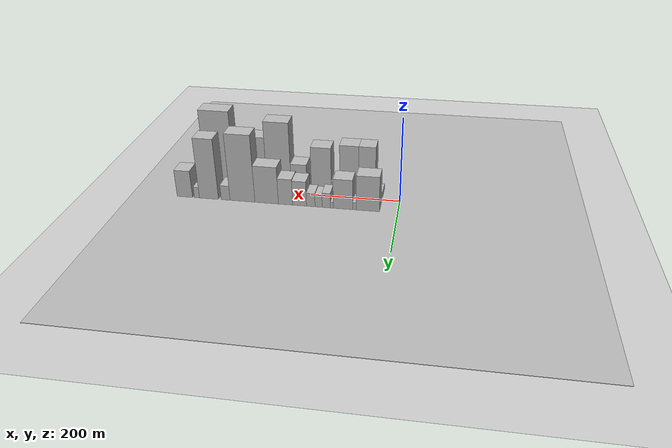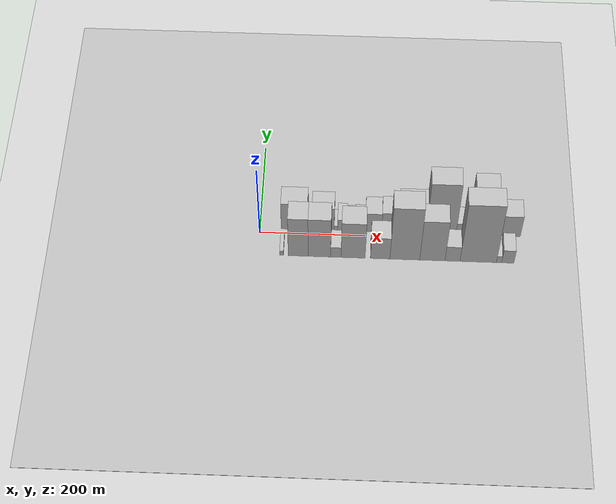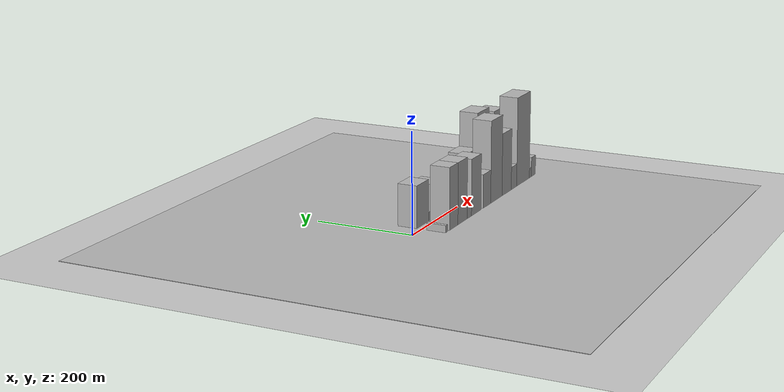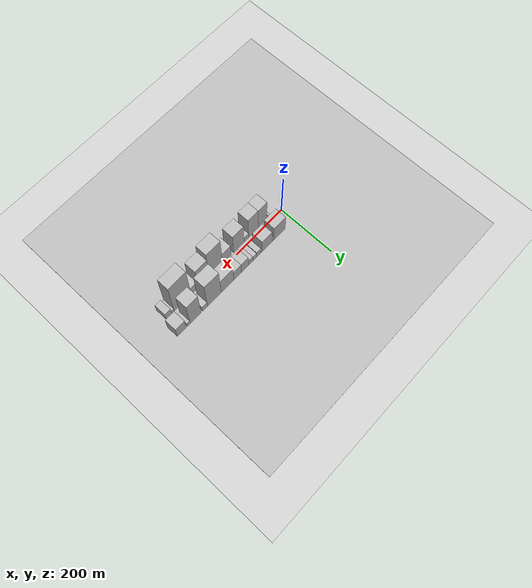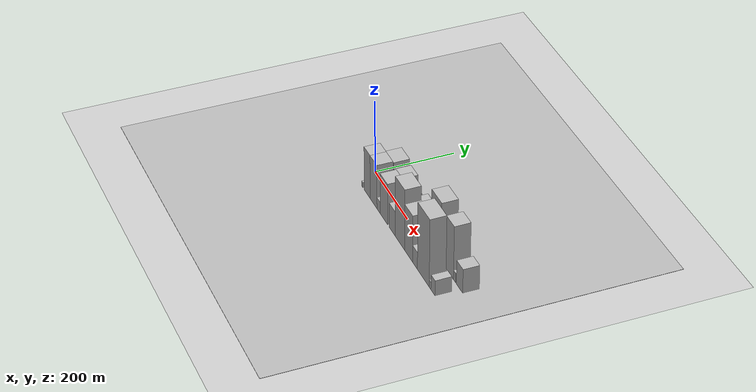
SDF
<?xml version="1.0" encoding="utf-8"?>

<sdf version="1.6">

   <world name="default">

      <gui fullscreen="0">

         <camera name="user_camera">

            <pose>-15 0 4.57585 0 0 0</pose>

            <view_controller>orbit</view_controller>

         </camera>

      </gui>

      <scene>

         <sky>

           <clouds>

             <speed>12</speed>

           </clouds>

         </sky>

         <ambient>0.4 0.4 0.4 1</ambient>

         <background>0.7 0.7 0.7 1</background>

         <shadows>1</shadows>

      </scene>

      <gravity>0 0 -9.8066</gravity>

      <magnetic_field>6e-06 2.3e-05 -4.2e-05</magnetic_field>

      <physics default="0" name="default_physics" type="ode">

         <ode>

            <solver>

               <type>quick</type>

               <iters>10</iters>

               <sor>1.0</sor>

               <use_dynamic_moi_rescaling>0</use_dynamic_moi_rescaling>

            </solver>

            <constraints>

               <cfm>0</cfm>

               <erp>0.2</erp>

               <contact_max_correcting_vel>100</contact_max_correcting_vel>

               <contact_surface_layer>0.001</contact_surface_layer>

            </constraints>

         </ode>

         <max_step_size>0.004</max_step_size>

         <real_time_factor>1</real_time_factor>

         <real_time_update_rate>250</real_time_update_rate>

      </physics>

      <light name="sun" type="directional">

         <cast_shadows>1</cast_shadows>

         <pose>0 0 10 0 0 0</pose>

         <diffuse>0.8 0.8 0.8 1</diffuse>

         <specular>0.2 0.2 0.2 1</specular>

         <attenuation>

            <range>1000</range>

            <constant>0.9</constant>

            <linear>0.01</linear>

            <quadratic>0.001</quadratic>

         </attenuation>

         <direction>-0.5 0.1 -0.9</direction>

      </light>

      <include>

         <name>ground_plane_1</name>

         <uri>model://HANNAS_ground_plane</uri>

         <pose>0 0 0  0 0 0</pose>

      </include>

      <include>

         <name>ground_plane_2</name>

         <uri>model://HANNAS_ground_plane</uri>

         <pose>100 0 0  0 0 0</pose>

      </include>

      <model name="building_1">

         <static>1</static>

         <pose frame="">65.1874 30.0000 0 0.000000 0.000000 1.570796</pose>

         <link name="link">

            <pose frame="">0 0 42.00 0 0 0</pose>

            <collision name="collision">

               <geometry>

                  <box>

                     <size>40.0000 50.3748 84.0000</size>

                  </box>

               </geometry>

               <max_contacts>10</max_contacts>

               <surface>

                  <contact>

                     <ode/>

                  </contact>

                  <bounce/>

                  <friction>

                     <torsional>

                        <ode/>

                     </torsional>

                     <ode/>

                  </friction>

               </surface>

            </collision>

            <visual name="visual">

               <cast_shadows>0</cast_shadows>

               <geometry>

                  <box>

                     <size>40.0000 50.3748 84.0000</size>

                  </box>

               </geometry>

               <material>

                  <script>

                     <uri>model://HANNAS_wall/materials/scripts</uri>

                     <uri>model://HANNAS_wall/materials/textures</uri>

                     <name>vrc/HANNAS_wall</name>

                  </script>

               </material>

            </visual>

            <self_collide>0</self_collide>

            <enable_wind>0</enable_wind>

            <kinematic>0</kinematic>

         </link>

      </model>

      <model name="building_2">

         <static>1</static>

         <pose frame="">94.4292 30.0000 0 0.000000 0.000000 1.570796</pose>

         <link name="link">

            <pose frame="">0 0 9.00 0 0 0</pose>

            <collision name="collision">

               <geometry>

                  <box>

                     <size>40.0000 8.1088 18.0000</size>

                  </box>

               </geometry>

               <max_contacts>10</max_contacts>

               <surface>

                  <contact>

                     <ode/>

                  </contact>

                  <bounce/>

                  <friction>

                     <torsional>

                        <ode/>

                     </torsional>

                     <ode/>

                  </friction>

               </surface>

            </collision>

            <visual name="visual">

               <cast_shadows>0</cast_shadows>

               <geometry>

                  <box>

                     <size>40.0000 8.1088 18.0000</size>

                  </box>

               </geometry>

               <material>

                  <script>

                     <uri>model://HANNAS_wall/materials/scripts</uri>

                     <uri>model://HANNAS_wall/materials/textures</uri>

                     <name>vrc/HANNAS_wall</name>

                  </script>

               </material>

            </visual>

            <self_collide>0</self_collide>

            <enable_wind>0</enable_wind>

            <kinematic>0</kinematic>

         </link>

      </model>

      <model name="building_3">

         <static>1</static>

         <pose frame="">119.7046 30.0000 0 0.000000 0.000000 1.570796</pose>

         <link name="link">

            <pose frame="">0 0 36.00 0 0 0</pose>

            <collision name="collision">

               <geometry>

                  <box>

                     <size>40.0000 42.4419 72.0000</size>

                  </box>

               </geometry>

               <max_contacts>10</max_contacts>

               <surface>

                  <contact>

                     <ode/>

                  </contact>

                  <bounce/>

                  <friction>

                     <torsional>

                        <ode/>

                     </torsional>

                     <ode/>

                  </friction>

               </surface>

            </collision>

            <visual name="visual">

               <cast_shadows>0</cast_shadows>

               <geometry>

                  <box>

                     <size>40.0000 42.4419 72.0000</size>

                  </box>

               </geometry>

               <material>

                  <script>

                     <uri>model://HANNAS_wall/materials/scripts</uri>

                     <uri>model://HANNAS_wall/materials/textures</uri>

                     <name>vrc/HANNAS_wall</name>

                  </script>

               </material>

            </visual>

            <self_collide>0</self_collide>

            <enable_wind>0</enable_wind>

            <kinematic>0</kinematic>

         </link>

      </model>

      <model name="building_4">

         <static>1</static>

         <pose frame="">144.0658 30.0000 0 0.000000 0.000000 1.570796</pose>

         <link name="link">

            <pose frame="">0 0 7.50 0 0 0</pose>

            <collision name="collision">

               <geometry>

                  <box>

                     <size>40.0000 6.2805 15.0000</size>

                  </box>

               </geometry>

               <max_contacts>10</max_contacts>

               <surface>

                  <contact>

                     <ode/>

                  </contact>

                  <bounce/>

                  <friction>

                     <torsional>

                        <ode/>

                     </torsional>

                     <ode/>

                  </friction>

               </surface>

            </collision>

            <visual name="visual">

               <cast_shadows>0</cast_shadows>

               <geometry>

                  <box>

                     <size>40.0000 6.2805 15.0000</size>

                  </box>

               </geometry>

               <material>

                  <script>

                     <uri>model://HANNAS_wall/materials/scripts</uri>

                     <uri>model://HANNAS_wall/materials/textures</uri>

                     <name>vrc/HANNAS_wall</name>

                  </script>

               </material>

            </visual>

            <self_collide>0</self_collide>

            <enable_wind>0</enable_wind>

            <kinematic>0</kinematic>

         </link>

      </model>

      <model name="building_5">

         <static>1</static>

         <pose frame="">156.3251 30.0000 0 0.000000 0.000000 1.570796</pose>

         <link name="link">

            <pose frame="">0 0 18.00 0 0 0</pose>

            <collision name="collision">

               <geometry>

                  <box>

                     <size>40.0000 18.2381 36.0000</size>

                  </box>

               </geometry>

               <max_contacts>10</max_contacts>

               <surface>

                  <contact>

                     <ode/>

                  </contact>

                  <bounce/>

                  <friction>

                     <torsional>

                        <ode/>

                     </torsional>

                     <ode/>

                  </friction>

               </surface>

            </collision>

            <visual name="visual">

               <cast_shadows>0</cast_shadows>

               <geometry>

                  <box>

                     <size>40.0000 18.2381 36.0000</size>

                  </box>

               </geometry>

               <material>

                  <script>

                     <uri>model://HANNAS_wall/materials/scripts</uri>

                     <uri>model://HANNAS_wall/materials/textures</uri>

                     <name>vrc/HANNAS_wall</name>

                  </script>

               </material>

            </visual>

            <self_collide>0</self_collide>

            <enable_wind>0</enable_wind>

            <kinematic>0</kinematic>

         </link>

      </model>

      <model name="building_6">

         <static>1</static>

         <pose frame="">173.2740 30.0000 0 0.000000 0.000000 1.570796</pose>

         <link name="link">

            <pose frame="">0 0 15.00 0 0 0</pose>

            <collision name="collision">

               <geometry>

                  <box>

                     <size>40.0000 15.6598 30.0000</size>

                  </box>

               </geometry>

               <max_contacts>10</max_contacts>

               <surface>

                  <contact>

                     <ode/>

                  </contact>

                  <bounce/>

                  <friction>

                     <torsional>

                        <ode/>

                     </torsional>

                     <ode/>

                  </friction>

               </surface>

            </collision>

            <visual name="visual">

               <cast_shadows>0</cast_shadows>

               <geometry>

                  <box>

                     <size>40.0000 15.6598 30.0000</size>

                  </box>

               </geometry>

               <material>

                  <script>

                     <uri>model://HANNAS_wall/materials/scripts</uri>

                     <uri>model://HANNAS_wall/materials/textures</uri>

                     <name>vrc/HANNAS_wall</name>

                  </script>

               </material>

            </visual>

            <self_collide>0</self_collide>

            <enable_wind>0</enable_wind>

            <kinematic>0</kinematic>

         </link>

      </model>

      <model name="building_7">

         <static>1</static>

         <pose frame="">190.5746 30.0000 0 0.000000 0.000000 1.570796</pose>

         <link name="link">

            <pose frame="">0 0 16.50 0 0 0</pose>

            <collision name="collision">

               <geometry>

                  <box>

                     <size>40.0000 18.9414 33.0000</size>

                  </box>

               </geometry>

               <max_contacts>10</max_contacts>

               <surface>

                  <contact>

                     <ode/>

                  </contact>

                  <bounce/>

                  <friction>

                     <torsional>

                        <ode/>

                     </torsional>

                     <ode/>

                  </friction>

               </surface>

            </collision>

            <visual name="visual">

               <cast_shadows>0</cast_shadows>

               <geometry>

                  <box>

                     <size>40.0000 18.9414 33.0000</size>

                  </box>

               </geometry>

               <material>

                  <script>

                     <uri>model://HANNAS_wall/materials/scripts</uri>

                     <uri>model://HANNAS_wall/materials/textures</uri>

                     <name>vrc/HANNAS_wall</name>

                  </script>

               </material>

            </visual>

            <self_collide>0</self_collide>

            <enable_wind>0</enable_wind>

            <kinematic>0</kinematic>

         </link>

      </model>

      <model name="building_8">

         <static>1</static>

         <pose frame="">215.5823 30.0000 0 0.000000 0.000000 1.570796</pose>

         <link name="link">

            <pose frame="">0 0 30.00 0 0 0</pose>

            <collision name="collision">

               <geometry>

                  <box>

                     <size>40.0000 31.0741 60.0000</size>

                  </box>

               </geometry>

               <max_contacts>10</max_contacts>

               <surface>

                  <contact>

                     <ode/>

                  </contact>

                  <bounce/>

                  <friction>

                     <torsional>

                        <ode/>

                     </torsional>

                     <ode/>

                  </friction>

               </surface>

            </collision>

            <visual name="visual">

               <cast_shadows>0</cast_shadows>

               <geometry>

                  <box>

                     <size>40.0000 31.0741 60.0000</size>

                  </box>

               </geometry>

               <material>

                  <script>

                     <uri>model://HANNAS_wall/materials/scripts</uri>

                     <uri>model://HANNAS_wall/materials/textures</uri>

                     <name>vrc/HANNAS_wall</name>

                  </script>

               </material>

            </visual>

            <self_collide>0</self_collide>

            <enable_wind>0</enable_wind>

            <kinematic>0</kinematic>

         </link>

      </model>

      <model name="building_9">

         <static>1</static>

         <pose frame="">247.0702 30.0000 0 0.000000 0.000000 1.570796</pose>

         <link name="link">

            <pose frame="">0 0 31.50 0 0 0</pose>

            <collision name="collision">

               <geometry>

                  <box>

                     <size>40.0000 31.9017 63.0000</size>

                  </box>

               </geometry>

               <max_contacts>10</max_contacts>

               <surface>

                  <contact>

                     <ode/>

                  </contact>

                  <bounce/>

                  <friction>

                     <torsional>

                        <ode/>

                     </torsional>

                     <ode/>

                  </friction>

               </surface>

            </collision>

            <visual name="visual">

               <cast_shadows>0</cast_shadows>

               <geometry>

                  <box>

                     <size>40.0000 31.9017 63.0000</size>

                  </box>

               </geometry>

               <material>

                  <script>

                     <uri>model://HANNAS_wall/materials/scripts</uri>

                     <uri>model://HANNAS_wall/materials/textures</uri>

                     <name>vrc/HANNAS_wall</name>

                  </script>

               </material>

            </visual>

            <self_collide>0</self_collide>

            <enable_wind>0</enable_wind>

            <kinematic>0</kinematic>

         </link>

      </model>

      <model name="building_10">

         <static>1</static>

         <pose frame="">289.5598 30.0000 0 0.000000 0.000000 1.570796</pose>

         <link name="link">

            <pose frame="">0 0 45.00 0 0 0</pose>

            <collision name="collision">

               <geometry>

                  <box>

                     <size>40.0000 53.0774 90.0000</size>

                  </box>

               </geometry>

               <max_contacts>10</max_contacts>

               <surface>

                  <contact>

                     <ode/>

                  </contact>

                  <bounce/>

                  <friction>

                     <torsional>

                        <ode/>

                     </torsional>

                     <ode/>

                  </friction>

               </surface>

            </collision>

            <visual name="visual">

               <cast_shadows>0</cast_shadows>

               <geometry>

                  <box>

                     <size>40.0000 53.0774 90.0000</size>

                  </box>

               </geometry>

               <material>

                  <script>

                     <uri>model://HANNAS_wall/materials/scripts</uri>

                     <uri>model://HANNAS_wall/materials/textures</uri>

                     <name>vrc/HANNAS_wall</name>

                  </script>

               </material>

            </visual>

            <self_collide>0</self_collide>

            <enable_wind>0</enable_wind>

            <kinematic>0</kinematic>

         </link>

      </model>

      <model name="building_11">

         <static>1</static>

         <pose frame="">344.4582 30.0000 0 0.000000 0.000000 1.570796</pose>

         <link name="link">

            <pose frame="">0 0 81.00 0 0 0</pose>

            <collision name="collision">

               <geometry>

                  <box>

                     <size>40.0000 56.7194 162.0000</size>

                  </box>

               </geometry>

               <max_contacts>10</max_contacts>

               <surface>

                  <contact>

                     <ode/>

                  </contact>

                  <bounce/>

                  <friction>

                     <torsional>

                        <ode/>

                     </torsional>

                     <ode/>

                  </friction>

               </surface>

            </collision>

            <visual name="visual">

               <cast_shadows>0</cast_shadows>

               <geometry>

                  <box>

                     <size>40.0000 56.7194 162.0000</size>

                  </box>

               </geometry>

               <material>

                  <script>

                     <uri>model://HANNAS_wall/materials/scripts</uri>

                     <uri>model://HANNAS_wall/materials/textures</uri>

                     <name>vrc/HANNAS_wall</name>

                  </script>

               </material>

            </visual>

            <self_collide>0</self_collide>

            <enable_wind>0</enable_wind>

            <kinematic>0</kinematic>

         </link>

      </model>

      <model name="building_12">

         <static>1</static>

         <pose frame="">383.0002 30.0000 0 0.000000 0.000000 1.570796</pose>

         <link name="link">

            <pose frame="">0 0 18.00 0 0 0</pose>

            <collision name="collision">

               <geometry>

                  <box>

                     <size>40.0000 20.3648 36.0000</size>

                  </box>

               </geometry>

               <max_contacts>10</max_contacts>

               <surface>

                  <contact>

                     <ode/>

                  </contact>

                  <bounce/>

                  <friction>

                     <torsional>

                        <ode/>

                     </torsional>

                     <ode/>

                  </friction>

               </surface>

            </collision>

            <visual name="visual">

               <cast_shadows>0</cast_shadows>

               <geometry>

                  <box>

                     <size>40.0000 20.3648 36.0000</size>

                  </box>

               </geometry>

               <material>

                  <script>

                     <uri>model://HANNAS_wall/materials/scripts</uri>

                     <uri>model://HANNAS_wall/materials/textures</uri>

                     <name>vrc/HANNAS_wall</name>

                  </script>

               </material>

            </visual>

            <self_collide>0</self_collide>

            <enable_wind>0</enable_wind>

            <kinematic>0</kinematic>

         </link>

      </model>

      <model name="building_13">

         <static>1</static>

         <pose frame="">421.2327 30.0000 0 0.000000 0.000000 1.570796</pose>

         <link name="link">

            <pose frame="">0 0 73.50 0 0 0</pose>

            <collision name="collision">

               <geometry>

                  <box>

                     <size>40.0000 44.1001 147.0000</size>

                  </box>

               </geometry>

               <max_contacts>10</max_contacts>

               <surface>

                  <contact>

                     <ode/>

                  </contact>

                  <bounce/>

                  <friction>

                     <torsional>

                        <ode/>

                     </torsional>

                     <ode/>

                  </friction>

               </surface>

            </collision>

            <visual name="visual">

               <cast_shadows>0</cast_shadows>

               <geometry>

                  <box>

                     <size>40.0000 44.1001 147.0000</size>

                  </box>

               </geometry>

               <material>

                  <script>

                     <uri>model://HANNAS_wall/materials/scripts</uri>

                     <uri>model://HANNAS_wall/materials/textures</uri>

                     <name>vrc/HANNAS_wall</name>

                  </script>

               </material>

            </visual>

            <self_collide>0</self_collide>

            <enable_wind>0</enable_wind>

            <kinematic>0</kinematic>

         </link>

      </model>

      <model name="building_14">

         <static>1</static>

         <pose frame="">449.2191 30.0000 0 0.000000 0.000000 1.570796</pose>

         <link name="link">

            <pose frame="">0 0 13.50 0 0 0</pose>

            <collision name="collision">

               <geometry>

                  <box>

                     <size>40.0000 11.8728 27.0000</size>

                  </box>

               </geometry>

               <max_contacts>10</max_contacts>

               <surface>

                  <contact>

                     <ode/>

                  </contact>

                  <bounce/>

                  <friction>

                     <torsional>

                        <ode/>

                     </torsional>

                     <ode/>

                  </friction>

               </surface>

            </collision>

            <visual name="visual">

               <cast_shadows>0</cast_shadows>

               <geometry>

                  <box>

                     <size>40.0000 11.8728 27.0000</size>

                  </box>

               </geometry>

               <material>

                  <script>

                     <uri>model://HANNAS_wall/materials/scripts</uri>

                     <uri>model://HANNAS_wall/materials/textures</uri>

                     <name>vrc/HANNAS_wall</name>

                  </script>

               </material>

            </visual>

            <self_collide>0</self_collide>

            <enable_wind>0</enable_wind>

            <kinematic>0</kinematic>

         </link>

      </model>

      <model name="building_15">

         <static>1</static>

         <pose frame="">477.0373 30.0000 0 0.000000 0.000000 1.570796</pose>

         <link name="link">

            <pose frame="">0 0 33.00 0 0 0</pose>

            <collision name="collision">

               <geometry>

                  <box>

                     <size>40.0000 35.7635 66.0000</size>

                  </box>

               </geometry>

               <max_contacts>10</max_contacts>

               <surface>

                  <contact>

                     <ode/>

                  </contact>

                  <bounce/>

                  <friction>

                     <torsional>

                        <ode/>

                     </torsional>

                     <ode/>

                  </friction>

               </surface>

            </collision>

            <visual name="visual">

               <cast_shadows>0</cast_shadows>

               <geometry>

                  <box>

                     <size>40.0000 35.7635 66.0000</size>

                  </box>

               </geometry>

               <material>

                  <script>

                     <uri>model://HANNAS_wall/materials/scripts</uri>

                     <uri>model://HANNAS_wall/materials/textures</uri>

                     <name>vrc/HANNAS_wall</name>

                  </script>

               </material>

            </visual>

            <self_collide>0</self_collide>

            <enable_wind>0</enable_wind>

            <kinematic>0</kinematic>

         </link>

      </model>

      <model name="building_16">

         <static>1</static>

         <pose frame="">43.6411 -30.0000 0 0.000000 0.000000 1.570796</pose>

         <link name="link">

            <pose frame="">0 0 7.50 0 0 0</pose>

            <collision name="collision">

               <geometry>

                  <box>

                     <size>40.0000 7.2822 15.0000</size>

                  </box>

               </geometry>

               <max_contacts>10</max_contacts>

               <surface>

                  <contact>

                     <ode/>

                  </contact>

                  <bounce/>

                  <friction>

                     <torsional>

                        <ode/>

                     </torsional>

                     <ode/>

                  </friction>

               </surface>

            </collision>

            <visual name="visual">

               <cast_shadows>0</cast_shadows>

               <geometry>

                  <box>

                     <size>40.0000 7.2822 15.0000</size>

                  </box>

               </geometry>

               <material>

                  <script>

                     <uri>model://HANNAS_wall/materials/scripts</uri>

                     <uri>model://HANNAS_wall/materials/textures</uri>

                     <name>vrc/HANNAS_wall</name>

                  </script>

               </material>

            </visual>

            <self_collide>0</self_collide>

            <enable_wind>0</enable_wind>

            <kinematic>0</kinematic>

         </link>

      </model>

      <model name="building_17">

         <static>1</static>

         <pose frame="">74.9755 -30.0000 0 0.000000 0.000000 1.570796</pose>

         <link name="link">

            <pose frame="">0 0 61.50 0 0 0</pose>

            <collision name="collision">

               <geometry>

                  <box>

                     <size>40.0000 37.3868 123.0000</size>

                  </box>

               </geometry>

               <max_contacts>10</max_contacts>

               <surface>

                  <contact>

                     <ode/>

                  </contact>

                  <bounce/>

                  <friction>

                     <torsional>

                        <ode/>

                     </torsional>

                     <ode/>

                  </friction>

               </surface>

            </collision>

            <visual name="visual">

               <cast_shadows>0</cast_shadows>

               <geometry>

                  <box>

                     <size>40.0000 37.3868 123.0000</size>

                  </box>

               </geometry>

               <material>

                  <script>

                     <uri>model://HANNAS_wall/materials/scripts</uri>

                     <uri>model://HANNAS_wall/materials/textures</uri>

                     <name>vrc/HANNAS_wall</name>

                  </script>

               </material>

            </visual>

            <self_collide>0</self_collide>

            <enable_wind>0</enable_wind>

            <kinematic>0</kinematic>

         </link>

      </model>

      <model name="building_18">

         <static>1</static>

         <pose frame="">114.9424 -30.0000 0 0.000000 0.000000 1.570796</pose>

         <link name="link">

            <pose frame="">0 0 61.50 0 0 0</pose>

            <collision name="collision">

               <geometry>

                  <box>

                     <size>40.0000 42.5469 123.0000</size>

                  </box>

               </geometry>

               <max_contacts>10</max_contacts>

               <surface>

                  <contact>

                     <ode/>

                  </contact>

                  <bounce/>

                  <friction>

                     <torsional>

                        <ode/>

                     </torsional>

                     <ode/>

                  </friction>

               </surface>

            </collision>

            <visual name="visual">

               <cast_shadows>0</cast_shadows>

               <geometry>

                  <box>

                     <size>40.0000 42.5469 123.0000</size>

                  </box>

               </geometry>

               <material>

                  <script>

                     <uri>model://HANNAS_wall/materials/scripts</uri>

                     <uri>model://HANNAS_wall/materials/textures</uri>

                     <name>vrc/HANNAS_wall</name>

                  </script>

               </material>

            </visual>

            <self_collide>0</self_collide>

            <enable_wind>0</enable_wind>

            <kinematic>0</kinematic>

         </link>

      </model>

      <model name="building_19">

         <static>1</static>

         <pose frame="">145.9340 -30.0000 0 0.000000 0.000000 1.570796</pose>

         <link name="link">

            <pose frame="">0 0 16.50 0 0 0</pose>

            <collision name="collision">

               <geometry>

                  <box>

                     <size>40.0000 19.4363 33.0000</size>

                  </box>

               </geometry>

               <max_contacts>10</max_contacts>

               <surface>

                  <contact>

                     <ode/>

                  </contact>

                  <bounce/>

                  <friction>

                     <torsional>

                        <ode/>

                     </torsional>

                     <ode/>

                  </friction>

               </surface>

            </collision>

            <visual name="visual">

               <cast_shadows>0</cast_shadows>

               <geometry>

                  <box>

                     <size>40.0000 19.4363 33.0000</size>

                  </box>

               </geometry>

               <material>

                  <script>

                     <uri>model://HANNAS_wall/materials/scripts</uri>

                     <uri>model://HANNAS_wall/materials/textures</uri>

                     <name>vrc/HANNAS_wall</name>

                  </script>

               </material>

            </visual>

            <self_collide>0</self_collide>

            <enable_wind>0</enable_wind>

            <kinematic>0</kinematic>

         </link>

      </model>

      <model name="building_20">

         <static>1</static>

         <pose frame="">178.3978 -30.0000 0 0.000000 0.000000 1.570796</pose>

         <link name="link">

            <pose frame="">0 0 57.00 0 0 0</pose>

            <collision name="collision">

               <geometry>

                  <box>

                     <size>40.0000 45.4912 114.0000</size>

                  </box>

               </geometry>

               <max_contacts>10</max_contacts>

               <surface>

                  <contact>

                     <ode/>

                  </contact>

                  <bounce/>

                  <friction>

                     <torsional>

                        <ode/>

                     </torsional>

                     <ode/>

                  </friction>

               </surface>

            </collision>

            <visual name="visual">

               <cast_shadows>0</cast_shadows>

               <geometry>

                  <box>

                     <size>40.0000 45.4912 114.0000</size>

                  </box>

               </geometry>

               <material>

                  <script>

                     <uri>model://HANNAS_wall/materials/scripts</uri>

                     <uri>model://HANNAS_wall/materials/textures</uri>

                     <name>vrc/HANNAS_wall</name>

                  </script>

               </material>

            </visual>

            <self_collide>0</self_collide>

            <enable_wind>0</enable_wind>

            <kinematic>0</kinematic>

         </link>

      </model>

      <model name="building_21">

         <static>1</static>

         <pose frame="">229.4100 -30.0000 0 0.000000 0.000000 1.570796</pose>

         <link name="link">

            <pose frame="">0 0 34.50 0 0 0</pose>

            <collision name="collision">

               <geometry>

                  <box>

                     <size>40.0000 36.5333 69.0000</size>

                  </box>

               </geometry>

               <max_contacts>10</max_contacts>

               <surface>

                  <contact>

                     <ode/>

                  </contact>

                  <bounce/>

                  <friction>

                     <torsional>

                        <ode/>

                     </torsional>

                     <ode/>

                  </friction>

               </surface>

            </collision>

            <visual name="visual">

               <cast_shadows>0</cast_shadows>

               <geometry>

                  <box>

                     <size>40.0000 36.5333 69.0000</size>

                  </box>

               </geometry>

               <material>

                  <script>

                     <uri>model://HANNAS_wall/materials/scripts</uri>

                     <uri>model://HANNAS_wall/materials/textures</uri>

                     <name>vrc/HANNAS_wall</name>

                  </script>

               </material>

            </visual>

            <self_collide>0</self_collide>

            <enable_wind>0</enable_wind>

            <kinematic>0</kinematic>

         </link>

      </model>

      <model name="building_22">

         <static>1</static>

         <pose frame="">275.8295 -30.0000 0 0.000000 0.000000 1.570796</pose>

         <link name="link">

            <pose frame="">0 0 84.00 0 0 0</pose>

            <collision name="collision">

               <geometry>

                  <box>

                     <size>40.0000 56.3055 168.0000</size>

                  </box>

               </geometry>

               <max_contacts>10</max_contacts>

               <surface>

                  <contact>

                     <ode/>

                  </contact>

                  <bounce/>

                  <friction>

                     <torsional>

                        <ode/>

                     </torsional>

                     <ode/>

                  </friction>

               </surface>

            </collision>

            <visual name="visual">

               <cast_shadows>0</cast_shadows>

               <geometry>

                  <box>

                     <size>40.0000 56.3055 168.0000</size>

                  </box>

               </geometry>

               <material>

                  <script>

                     <uri>model://HANNAS_wall/materials/scripts</uri>

                     <uri>model://HANNAS_wall/materials/textures</uri>

                     <name>vrc/HANNAS_wall</name>

                  </script>

               </material>

            </visual>

            <self_collide>0</self_collide>

            <enable_wind>0</enable_wind>

            <kinematic>0</kinematic>

         </link>

      </model>

      <model name="building_23">

         <static>1</static>

         <pose frame="">327.6600 -30.0000 0 0.000000 0.000000 1.570796</pose>

         <link name="link">

            <pose frame="">0 0 64.50 0 0 0</pose>

            <collision name="collision">

               <geometry>

                  <box>

                     <size>40.0000 47.3555 129.0000</size>

                  </box>

               </geometry>

               <max_contacts>10</max_contacts>

               <surface>

                  <contact>

                     <ode/>

                  </contact>

                  <bounce/>

                  <friction>

                     <torsional>

                        <ode/>

                     </torsional>

                     <ode/>

                  </friction>

               </surface>

            </collision>

            <visual name="visual">

               <cast_shadows>0</cast_shadows>

               <geometry>

                  <box>

                     <size>40.0000 47.3555 129.0000</size>

                  </box>

               </geometry>

               <material>

                  <script>

                     <uri>model://HANNAS_wall/materials/scripts</uri>

                     <uri>model://HANNAS_wall/materials/textures</uri>

                     <name>vrc/HANNAS_wall</name>

                  </script>

               </material>

            </visual>

            <self_collide>0</self_collide>

            <enable_wind>0</enable_wind>

            <kinematic>0</kinematic>

         </link>

      </model>

      <model name="building_24">

         <static>1</static>

         <pose frame="">365.4144 -30.0000 0 0.000000 0.000000 1.570796</pose>

         <link name="link">

            <pose frame="">0 0 24.00 0 0 0</pose>

            <collision name="collision">

               <geometry>

                  <box>

                     <size>40.0000 28.1533 48.0000</size>

                  </box>

               </geometry>

               <max_contacts>10</max_contacts>

               <surface>

                  <contact>

                     <ode/>

                  </contact>

                  <bounce/>

                  <friction>

                     <torsional>

                        <ode/>

                     </torsional>

                     <ode/>

                  </friction>

               </surface>

            </collision>

            <visual name="visual">

               <cast_shadows>0</cast_shadows>

               <geometry>

                  <box>

                     <size>40.0000 28.1533 48.0000</size>

                  </box>

               </geometry>

               <material>

                  <script>

                     <uri>model://HANNAS_wall/materials/scripts</uri>

                     <uri>model://HANNAS_wall/materials/textures</uri>

                     <name>vrc/HANNAS_wall</name>

                  </script>

               </material>

            </visual>

            <self_collide>0</self_collide>

            <enable_wind>0</enable_wind>

            <kinematic>0</kinematic>

         </link>

      </model>

      <model name="building_25">

         <static>1</static>

         <pose frame="">413.5925 -30.0000 0 0.000000 0.000000 1.570796</pose>

         <link name="link">

            <pose frame="">0 0 93.00 0 0 0</pose>

            <collision name="collision">

               <geometry>

                  <box>

                     <size>40.0000 68.2031 186.0000</size>

                  </box>

               </geometry>

               <max_contacts>10</max_contacts>

               <surface>

                  <contact>

                     <ode/>

                  </contact>

                  <bounce/>

                  <friction>

                     <torsional>

                        <ode/>

                     </torsional>

                     <ode/>

                  </friction>

               </surface>

            </collision>

            <visual name="visual">

               <cast_shadows>0</cast_shadows>

               <geometry>

                  <box>

                     <size>40.0000 68.2031 186.0000</size>

                  </box>

               </geometry>

               <material>

                  <script>

                     <uri>model://HANNAS_wall/materials/scripts</uri>

                     <uri>model://HANNAS_wall/materials/textures</uri>

                     <name>vrc/HANNAS_wall</name>

                  </script>

               </material>

            </visual>

            <self_collide>0</self_collide>

            <enable_wind>0</enable_wind>

            <kinematic>0</kinematic>

         </link>

      </model>

      <model name="building_26">

         <static>1</static>

         <pose frame="">452.7424 -30.0000 0 0.000000 0.000000 1.570796</pose>

         <link name="link">

            <pose frame="">0 0 10.50 0 0 0</pose>

            <collision name="collision">

               <geometry>

                  <box>

                     <size>40.0000 10.0966 21.0000</size>

                  </box>

               </geometry>

               <max_contacts>10</max_contacts>

               <surface>

                  <contact>

                     <ode/>

                  </contact>

                  <bounce/>

                  <friction>

                     <torsional>

                        <ode/>

                     </torsional>

                     <ode/>

                  </friction>

               </surface>

            </collision>

            <visual name="visual">

               <cast_shadows>0</cast_shadows>

               <geometry>

                  <box>

                     <size>40.0000 10.0966 21.0000</size>

                  </box>

               </geometry>

               <material>

                  <script>

                     <uri>model://HANNAS_wall/materials/scripts</uri>

                     <uri>model://HANNAS_wall/materials/textures</uri>

                     <name>vrc/HANNAS_wall</name>

                  </script>

               </material>

            </visual>

            <self_collide>0</self_collide>

            <enable_wind>0</enable_wind>

            <kinematic>0</kinematic>

         </link>

      </model>

      <model name="building_27">

         <static>1</static>

         <pose frame="">469.1866 -30.0000 0 0.000000 0.000000 1.570796</pose>

         <link name="link">

            <pose frame="">0 0 21.00 0 0 0</pose>

            <collision name="collision">

               <geometry>

                  <box>

                     <size>40.0000 22.7919 42.0000</size>

                  </box>

               </geometry>

               <max_contacts>10</max_contacts>

               <surface>

                  <contact>

                     <ode/>

                  </contact>

                  <bounce/>

                  <friction>

                     <torsional>

                        <ode/>

                     </torsional>

                     <ode/>

                  </friction>

               </surface>

            </collision>

            <visual name="visual">

               <cast_shadows>0</cast_shadows>

               <geometry>

                  <box>

                     <size>40.0000 22.7919 42.0000</size>

                  </box>

               </geometry>

               <material>

                  <script>

                     <uri>model://HANNAS_wall/materials/scripts</uri>

                     <uri>model://HANNAS_wall/materials/textures</uri>

                     <name>vrc/HANNAS_wall</name>

                  </script>

               </material>

            </visual>

            <self_collide>0</self_collide>

            <enable_wind>0</enable_wind>

            <kinematic>0</kinematic>

         </link>

      </model>

   </world>

</sdf>

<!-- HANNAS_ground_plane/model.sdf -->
<sdf version="1.4">
<model name="HANNAS_ground_plane">
  <static>true</static>
    <link name="link">
      <collision name="collision">
        <geometry>
          <plane>
            <normal>0 0 1</normal>
            <size>1000 1000</size>
          </plane>
        </geometry>
        <surface>
          <friction>
            <ode>
              <mu>100</mu>
              <mu2>50</mu2>
            </ode>
          </friction>
        </surface>
      </collision>
      <visual name="visual">
        <cast_shadows>false</cast_shadows>
        <geometry>
          <plane>
            <normal>0 0 1</normal>
            <size>1000 1000</size>
          </plane>
        </geometry>
        <material>
          <script>
            <uri>model://HANNAS_ground_plane/materials/scripts/HANNAS_ground_plane.material</uri>
	    <uri>model://HANNAS_ground_plane/materials/textures</uri>
            <name>HANNASGroundPlane/Image</name>
          </script>
        </material>
      </visual>
    </link>
  </model>
</sdf>
